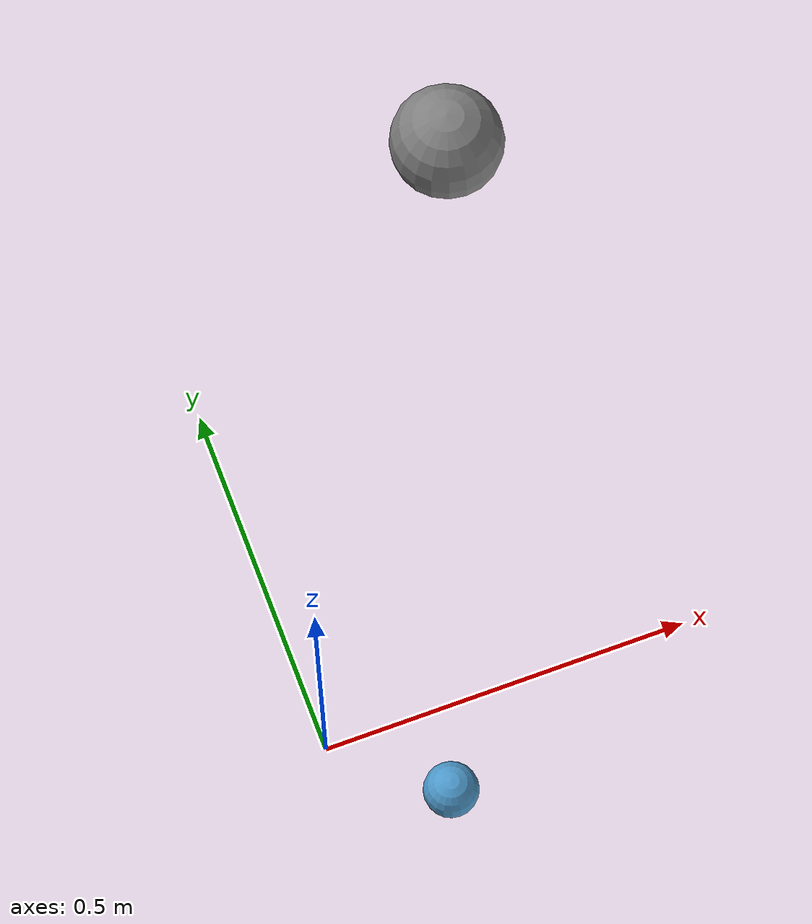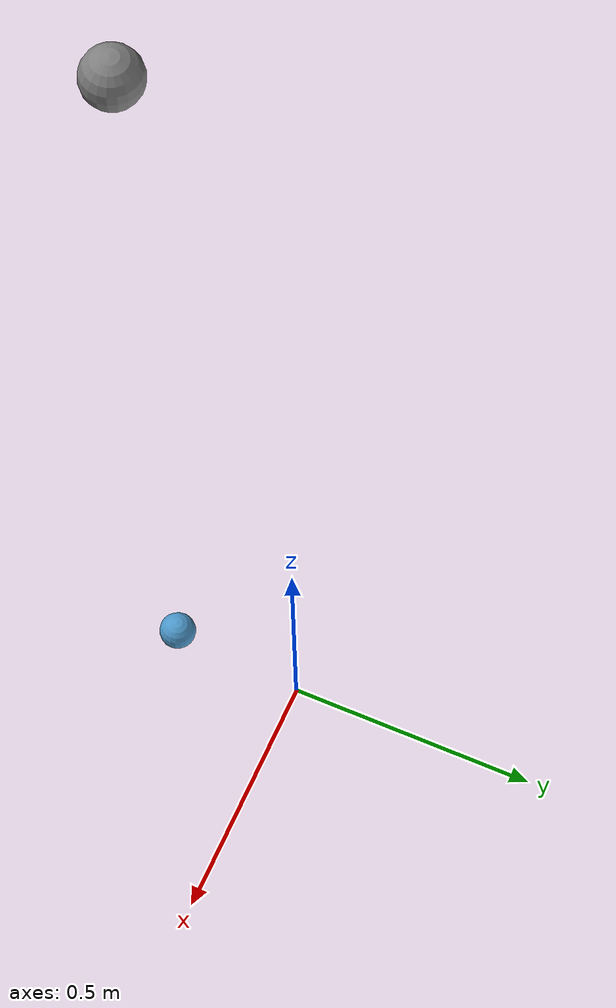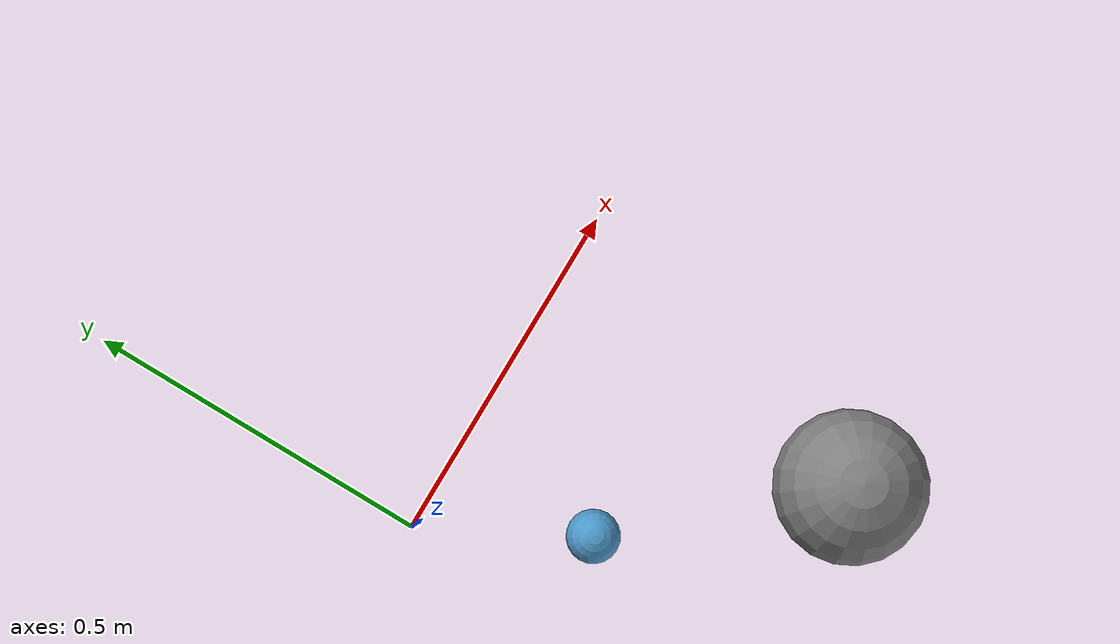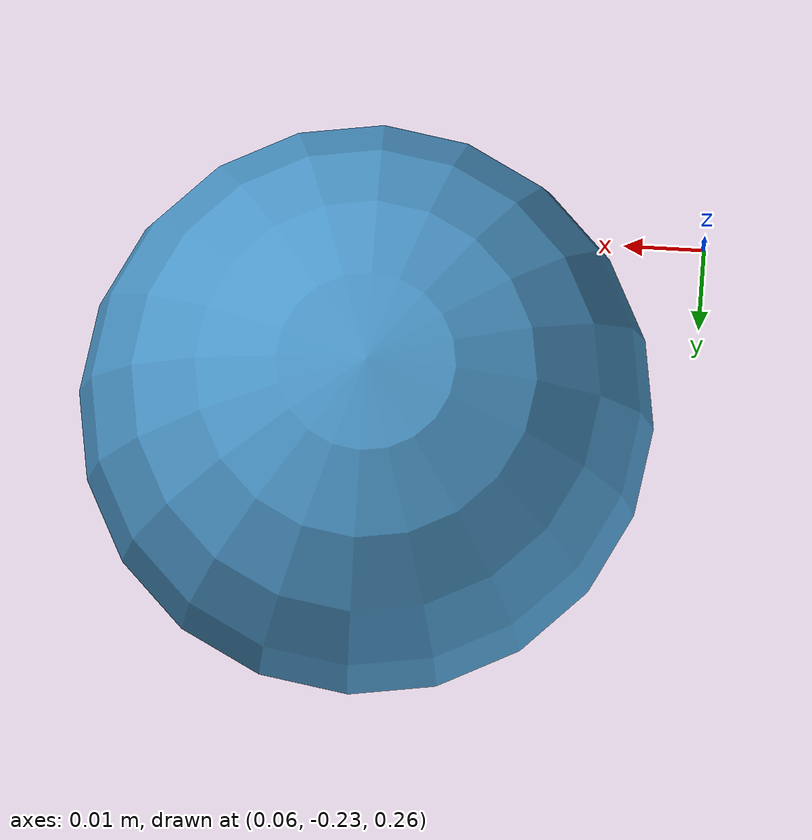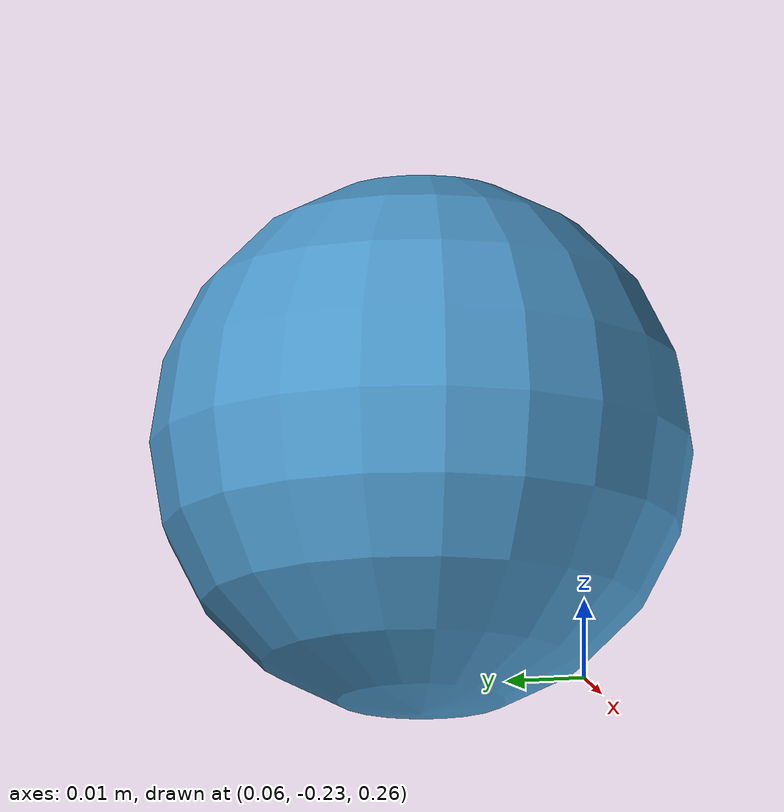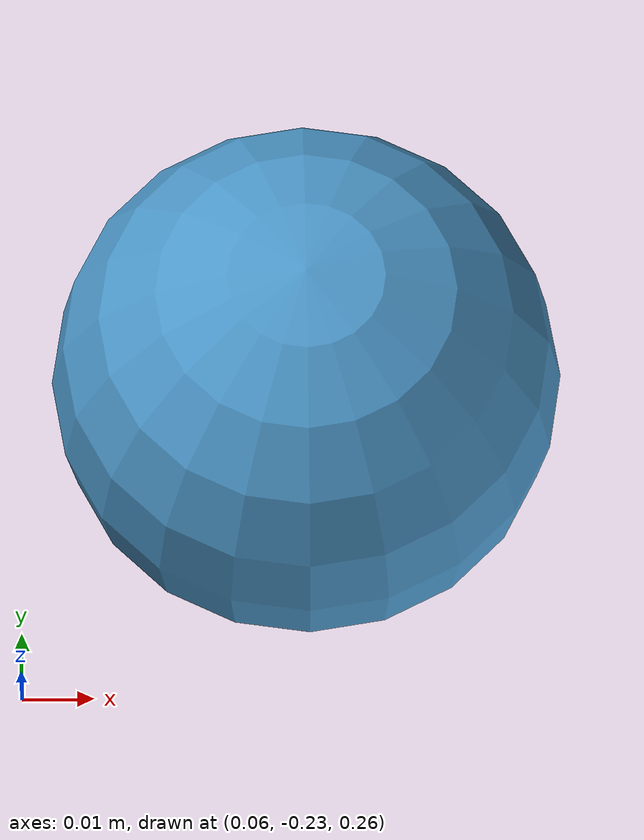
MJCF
<mujoco model="pregrasp_demo_not_a_real_robot">
  <compiler angle="radian"/>
  <option gravity="0 0 0"/>
  <worldbody>
    <body name="base_Link" pos="0.1 -0.2 0.3">
      <body name="left_link_0">
        <joint name="left_0" type="slide" axis="1 0 0" limited="true" range="-1.5 1.5"/>
        <inertial pos="0 0 0" mass="0.1" diaginertia="0.001 0.001 0.001"/>
      <body name="left_link_1">
        <joint name="left_1" type="slide" axis="0 1 0" limited="true" range="-1.5 1.5"/>
        <inertial pos="0 0 0" mass="0.1" diaginertia="0.001 0.001 0.001"/>
      <body name="left_link_2">
        <joint name="left_2" type="slide" axis="0 0 1" limited="true" range="0.1 1.5"/>
        <inertial pos="0 0 0" mass="0.1" diaginertia="0.001 0.001 0.001"/>
      <body name="left_link_3">
        <joint name="left_3" type="hinge" axis="1 0 0" limited="true" range="-3.141592653589793 3.141592653589793"/>
        <inertial pos="0 0 0" mass="0.1" diaginertia="0.001 0.001 0.001"/>
      <body name="left_link_4">
        <joint name="left_4" type="hinge" axis="0 1 0" limited="true" range="-3.141592653589793 3.141592653589793"/>
        <inertial pos="0 0 0" mass="0.1" diaginertia="0.001 0.001 0.001"/>
      <body name="left_link_5">
        <joint name="left_5" type="hinge" axis="0 0 1" limited="true" range="-3.141592653589793 3.141592653589793"/>
        <inertial pos="0 0 0" mass="0.1" diaginertia="0.001 0.001 0.001"/>
      <body name="left_wrist">
        <joint name="left_6" type="hinge" axis="0 0 1" limited="true" range="-3.141592653589793 3.141592653589793"/>
        <inertial pos="0 0 0" mass="0.1" diaginertia="0.001 0.001 0.001"/>
        <geom name="left_tool" type="sphere" size="0.035" rgba="0.3 0.6 0.8 1"/>
      </body>
      </body>
      </body>
      </body>
      </body>
      </body>
      </body>
      <body name="right_link_0">
        <joint name="right_0" type="slide" axis="1 0 0" limited="true" range="-1.5 1.5"/>
        <inertial pos="0 0 0" mass="0.1" diaginertia="0.001 0.001 0.001"/>
      <body name="right_link_1">
        <joint name="right_1" type="slide" axis="0 1 0" limited="true" range="-1.5 1.5"/>
        <inertial pos="0 0 0" mass="0.1" diaginertia="0.001 0.001 0.001"/>
      <body name="right_link_2">
        <joint name="right_2" type="slide" axis="0 0 1" limited="true" range="0.1 1.5"/>
        <inertial pos="0 0 0" mass="0.1" diaginertia="0.001 0.001 0.001"/>
      <body name="right_link_3">
        <joint name="right_3" type="hinge" axis="1 0 0" limited="true" range="-3.141592653589793 3.141592653589793"/>
        <inertial pos="0 0 0" mass="0.1" diaginertia="0.001 0.001 0.001"/>
      <body name="right_link_4">
        <joint name="right_4" type="hinge" axis="0 1 0" limited="true" range="-3.141592653589793 3.141592653589793"/>
        <inertial pos="0 0 0" mass="0.1" diaginertia="0.001 0.001 0.001"/>
      <body name="right_link_5">
        <joint name="right_5" type="hinge" axis="0 0 1" limited="true" range="-3.141592653589793 3.141592653589793"/>
        <inertial pos="0 0 0" mass="0.1" diaginertia="0.001 0.001 0.001"/>
      <body name="right_wrist">
        <joint name="right_6" type="hinge" axis="0 0 1" limited="true" range="-3.141592653589793 3.141592653589793"/>
        <inertial pos="0 0 0" mass="0.1" diaginertia="0.001 0.001 0.001"/>
        <geom name="right_tool" type="sphere" size="0.035" rgba="0.3 0.6 0.8 1"/>
      </body>
      </body>
      </body>
      </body>
      </body>
      </body>
      </body>
      <body name="head" pos="0 0 1.8">
        <joint name="head_0" axis="0 0 1" limited="true" range="-1 1"/>
        <joint name="head_1" axis="0 1 0" limited="true" range="-1 1"/>
        <geom name="head_shape" type="sphere" size="0.05"/>
      </body>
    </body>
  </worldbody>
</mujoco>
